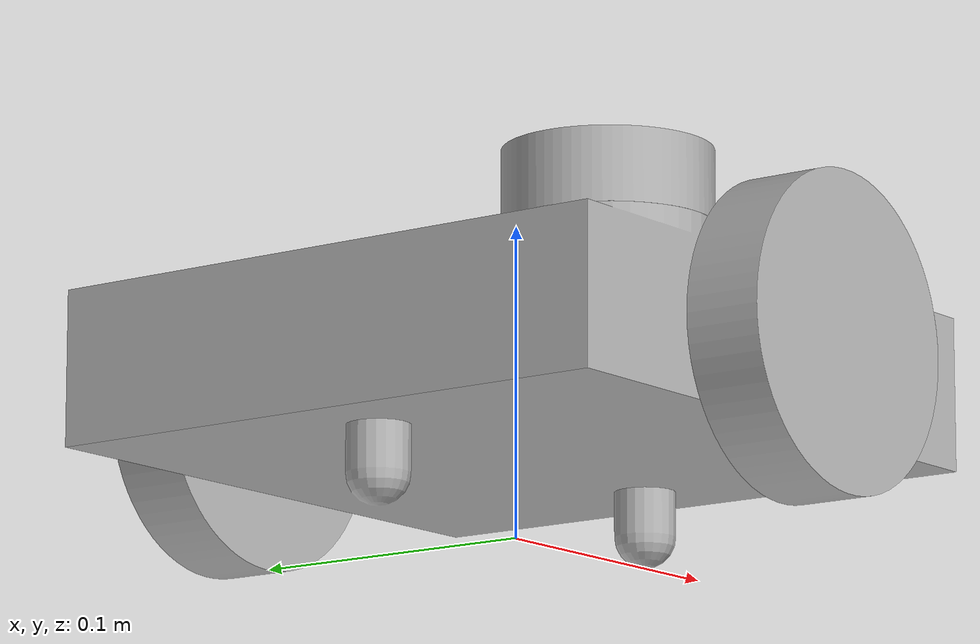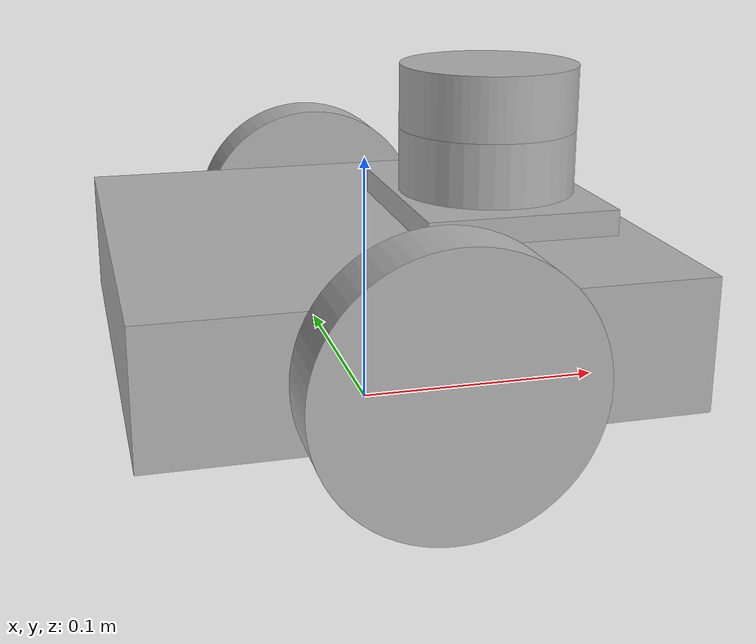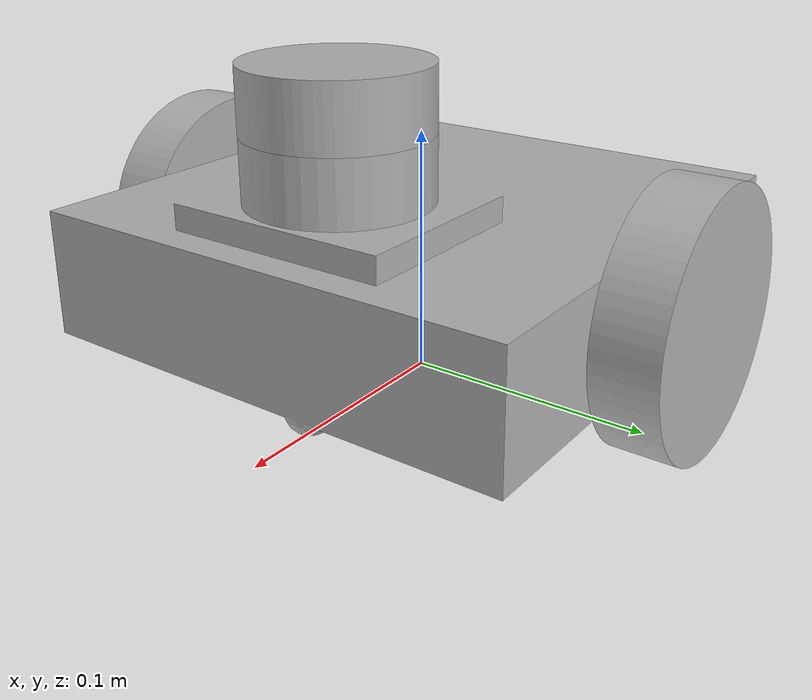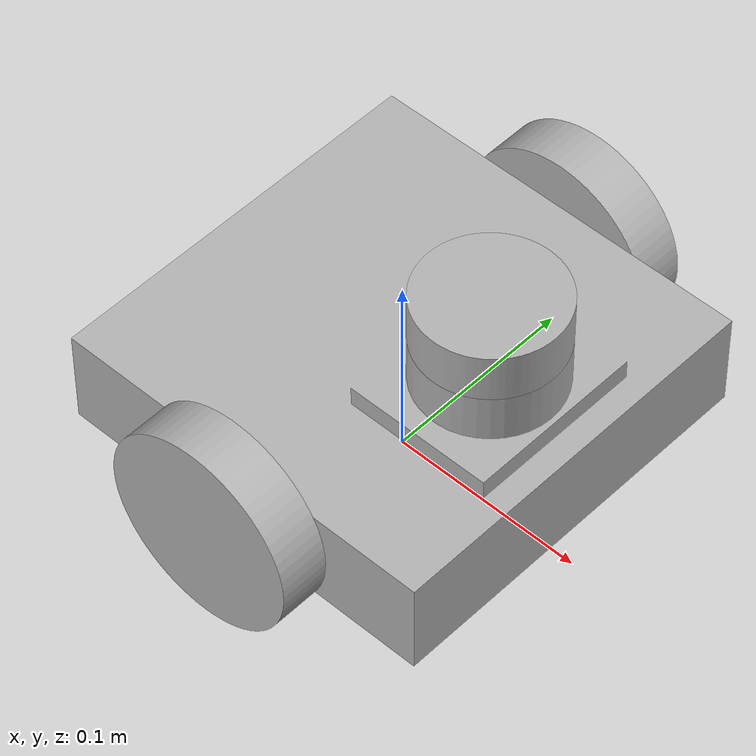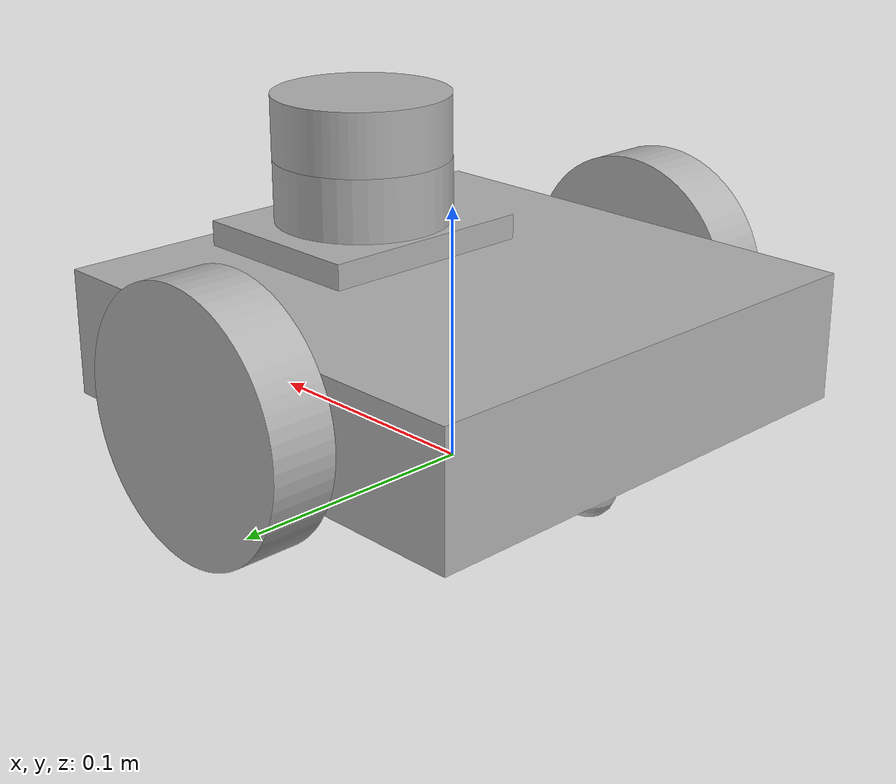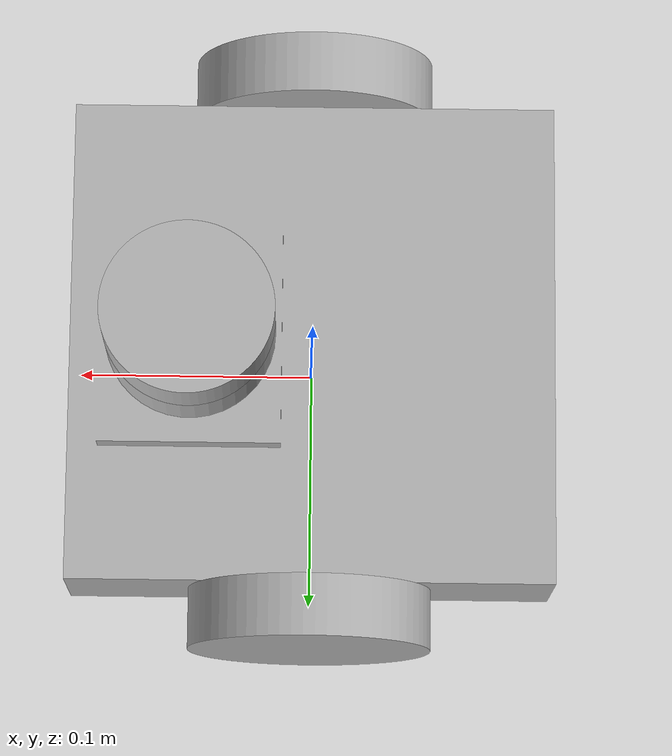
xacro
<?xml version="1.0"?>
<robot name="fusionbot" xmlns:xacro="http://www.ros.org/wiki/xacro">

  <xacro:include filename="$(find fusionbot_description)/urdf/materials.xacro" />
  <xacro:include filename="$(find fusionbot_description)/urdf/fusionbot.gazebo" />

  <link name='base_footprint' />

  <link name="base_link">
    <inertial>
      <origin rpy="0 0 0" xyz="0.0037594591254762827 0.0 0.052804115668456025" />
      <mass value="2.3079643337726483" />
      <inertia ixx="0.00789" ixy="0.0" ixz="-0.000325" iyy="0.008347" iyz="0.0" izz="0.01475" />
    </inertial>
    <visual>
      <origin rpy="0 0 0" xyz="0 0 0" />
      <geometry>
        <mesh filename="model://fusionbot/meshes/fusionbot/base_link.stl" scale="0.001 0.001 0.001" />
      </geometry>
      <material name="silver" />
    </visual>
    <collision>
      <origin rpy="0 0 0" xyz="0 0 0" />
      <geometry>
        <mesh filename="model://fusionbot/meshes/fusionbot/base_link.stl" scale="0.001 0.001 0.001" />
      </geometry>
    </collision>
  </link>

  <link name="right_wheel_1">
    <inertial>
      <origin rpy="0 0 0" xyz="-5.790023100122029e-18 -0.012499999999999997 0.0" />
      <mass value="0.1826050729899067" />
      <inertia ixx="0.000124" ixy="-0.0" ixz="0.0" iyy="0.000228" iyz="0.0" izz="0.000124" />
    </inertial>
    <visual>
      <origin rpy="0 0 0" xyz="-0.0 0.1 -0.05" />
      <geometry>
        <mesh filename="model://fusionbot/meshes/fusionbot/right_wheel_1.stl" scale="0.001 0.001 0.001" />
      </geometry>
      <material name="silver" />
    </visual>
    <collision>
      <origin rpy="0 0 0" xyz="-0.0 0.1 -0.05" />
      <geometry>
        <mesh filename="model://fusionbot/meshes/fusionbot/right_wheel_1.stl" scale="0.001 0.001 0.001" />
      </geometry>
    </collision>
  </link>

  <link name="left_wheel_1">
    <inertial>
      <origin rpy="0 0 0" xyz="-5.790023100122029e-18 0.012499999999999997 0.0" />
      <mass value="0.1826050729899067" />
      <inertia ixx="0.000124" ixy="0.0" ixz="0.0" iyy="0.000228" iyz="-0.0" izz="0.000124" />
    </inertial>
    <visual>
      <origin rpy="0 0 0" xyz="-0.0 -0.1 -0.05" />
      <geometry>
        <mesh filename="model://fusionbot/meshes/fusionbot/left_wheel_1.stl" scale="0.001 0.001 0.001" />
      </geometry>
      <material name="silver" />
    </visual>
    <collision>
      <origin rpy="0 0 0" xyz="-0.0 -0.1 -0.05" />
      <geometry>
        <mesh filename="model://fusionbot/meshes/fusionbot/left_wheel_1.stl" scale="0.001 0.001 0.001" />
      </geometry>
    </collision>
  </link>

  <link name="lidar_1">
    <inertial>
      <origin rpy="0 0 0" xyz="0.0 0.0 0.012499999999999997" />
      <mass value="0.7552585088770711" />
      <inertia ixx="0.000271" ixy="0.0" ixz="0.0" iyy="0.000271" iyz="-0.0" izz="0.000463" />
    </inertial>
    <visual>
      <origin rpy="0 0 0" xyz="-0.05 -0.0 -0.11" />
      <geometry>
        <mesh filename="model://fusionbot/meshes/fusionbot/lidar_1.stl" scale="0.001 0.001 0.001" />
      </geometry>
      <material name="silver" />
    </visual>
    <collision>
      <origin rpy="0 0 0" xyz="-0.05 -0.0 -0.11" />
      <geometry>
        <mesh filename="model://fusionbot/meshes/fusionbot/lidar_1.stl" scale="0.001 0.001 0.001" />
      </geometry>
    </collision>
  </link>

  <joint name='base_link_joint' type='fixed'>
    <origin rpy="0 0 0" xyz="0 0 0" />
    <parent link="base_footprint" />
    <child link="base_link" />
  </joint>

  <joint name="right_wheel_joint" type="continuous">
    <origin rpy="0 0 0" xyz="0.0 -0.1 0.05" />
    <parent link="base_link" />
    <child link="right_wheel_1" />
    <axis xyz="0.0 1.0 0.0" />
  </joint>

  <joint name="left_wheel_joint" type="continuous">
    <origin rpy="0 0 0" xyz="0.0 0.1 0.05" />
    <parent link="base_link" />
    <child link="left_wheel_1" />
    <axis xyz="0.0 1.0 0.0" />
  </joint>

  <joint name="lidar_joint" type="fixed">
    <origin rpy="0 0 0" xyz="0.05 0.0 0.11" />
    <parent link="base_link" />
    <child link="lidar_1" />
  </joint>

</robot>

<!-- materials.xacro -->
<robot name="fusionbot" xmlns:xacro="http://www.ros.org/wiki/xacro">

  <material name="silver">
    <color rgba="0.700 0.700 0.700 1.000" />
  </material>
  <material name="white">
    <color rgba="1 1 1 0.6" />
  </material>
  <material name="black">
    <color rgba="0 0 0 0.7" />
  </material>
  <material name="red">
    <color rgba="1 0 0 1" />
  </material>
  <material name="blue">
    <color rgba="0 0 0.8 1"/>
  </material>

</robot>

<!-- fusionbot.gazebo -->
<robot name="fusionbot" xmlns:xacro="http://www.ros.org/wiki/xacro" >

<xacro:property name="body_color" value="Gazebo/Silver" />

<gazebo>
  <plugin filename="libgazebo_ros_control.so" name="control"/>
</gazebo>
<gazebo reference="base_link">
  <material>${body_color}</material>
  <mu1>0.1</mu1>
  <mu2>0.1</mu2>
  <selfCollide>true</selfCollide>
  <gravity>true</gravity>
</gazebo>

<gazebo reference="lidar_1">
  <material>${body_color}</material>
  <mu1>0.2</mu1>
  <mu2>0.2</mu2>
  <selfCollide>true</selfCollide>
</gazebo>

<gazebo reference="right_wheel_1">
  <material>${body_color}</material>
  <mu1>1500</mu1>
  <mu2>1500</mu2>
  <selfCollide>true</selfCollide>
</gazebo>

<gazebo reference="left_wheel_1">
  <material>${body_color}</material>
  <mu1>1500</mu1>
  <mu2>1500</mu2>
  <selfCollide>true</selfCollide>
</gazebo>

</robot>
